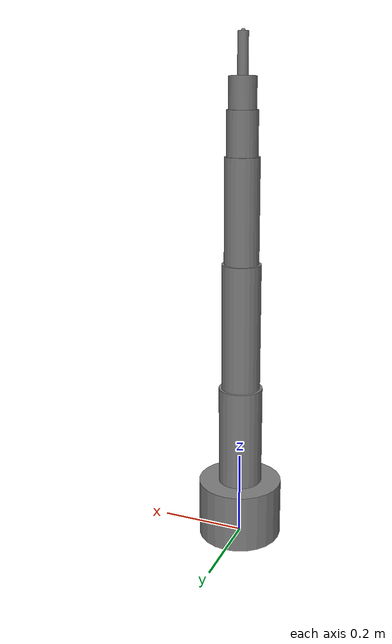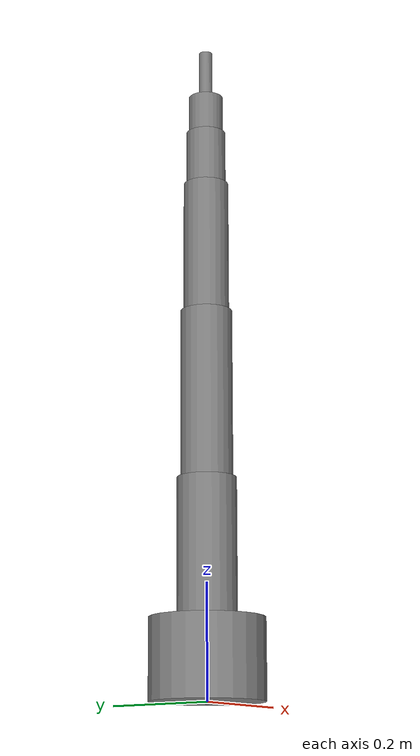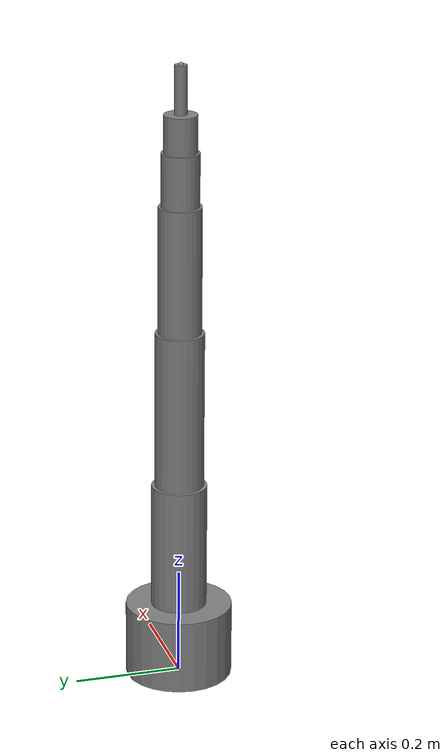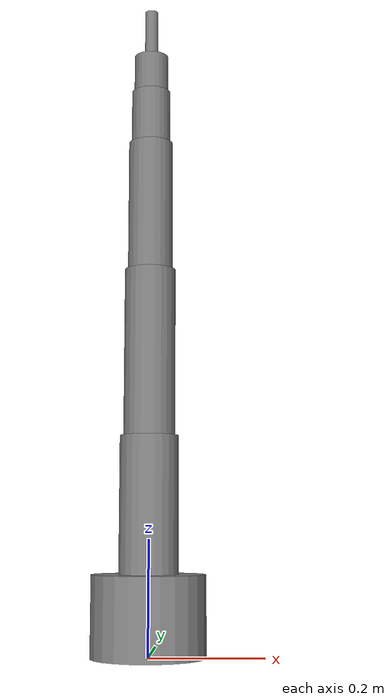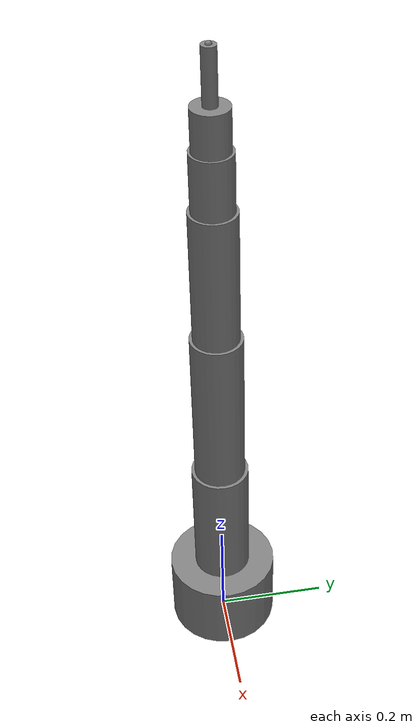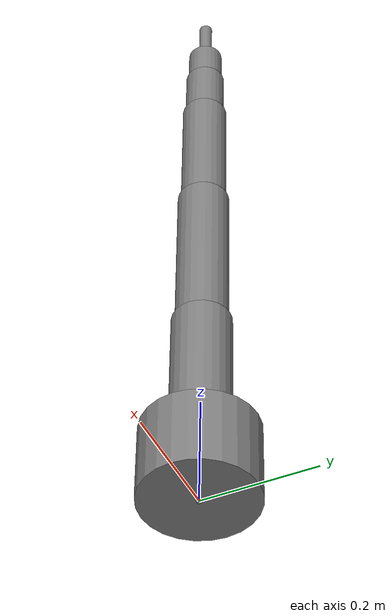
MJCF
<mujoco model="structural_body">
  <compiler angle="radian"/>

  <worldbody>
    <body name="body_0000">
      <inertial pos="0 0 0.07" quat="0.5 0.5 -0.5 0.5" mass="6" diaginertia="0.03 0.0248 0.0248"/>
      <geom size="0.1 0.07" pos="0 0 0.07" type="cylinder"/>
      <site name="robot_base" pos="0 0 0"/>
      <body name="body_0001" pos="0 0 0.14">
        <inertial pos="0 0 0.12" mass="1.83489" diaginertia="0.0100479 0.0100479 0.00248077"/>
        <joint name="axis_0000" pos="0 0 0" axis="0 0 1" range="-2.85 2.85" actuatorfrcrange="-140 140"/>
        <geom size="0.052 0.12" pos="0 0 0.12" type="cylinder"/>
        <body name="body_0002" pos="0 0 0.24">
          <inertial pos="0 0 0.15" mass="1.77618" diaginertia="0.0142511 0.0142511 0.00185963"/>
          <joint name="axis_0001" pos="0 0 0" axis="0 1 0" range="-2.85 2.85" actuatorfrcrange="-140 140"/>
          <geom size="0.04576 0.15" pos="0 0 0.15" type="cylinder"/>
          <body name="body_0003" pos="0 0 0.3">
            <inertial pos="0 0 0.12" mass="1.10038" diaginertia="0.00572789 0.00572789 0.00089217"/>
            <joint name="axis_0002" pos="0 0 0" axis="0 1 0" range="-2.85 2.85" actuatorfrcrange="-140 140"/>
            <geom size="0.040269 0.12" pos="0 0 0.12" type="cylinder"/>
            <body name="body_0004" pos="0 0 0.24">
              <inertial pos="0 0 0.05" mass="0.355055" diaginertia="0.00040734 0.00040734 0.00022293"/>
              <joint name="axis_0003" pos="0 0 0" axis="0 0 1" range="-2.85 2.85" actuatorfrcrange="-140 140"/>
              <geom size="0.035437 0.05" pos="0 0 0.05" type="cylinder"/>
              <body name="body_0005" pos="0 0 0.1">
                <inertial pos="0 0 0.035" mass="0.25" diaginertia="0.00016286 0.00016286 0.00012156"/>
                <joint name="axis_0004" pos="0 0 0" axis="0 1 0" range="-2.85 2.85" actuatorfrcrange="-140 140"/>
                <geom size="0.031184 0.035" pos="0 0 0.035" type="cylinder"/>
                <site name="body_0005_wrist" pos="0 0 0"/>
                <body name="body_0006" pos="0 0 0.07">
                  <inertial pos="0 0 0.045" mass="0.18" diaginertia="0.00012798 0.00012798 1.296e-05"/>
                  <geom size="0.012 0.045" pos="0 0 0.045" type="cylinder"/>
                  <site name="body_0005_tip" pos="0 0 0.09"/>
                </body>
              </body>
            </body>
          </body>
        </body>
      </body>
    </body>
  </worldbody>

  <actuator>
    <general name="axis_0000_motor" joint="axis_0000" ctrllimited="true" ctrlrange="-140 140" forcelimited="true" forcerange="-140 140"/>
    <general name="axis_0001_motor" joint="axis_0001" ctrllimited="true" ctrlrange="-140 140" forcelimited="true" forcerange="-140 140"/>
    <general name="axis_0002_motor" joint="axis_0002" ctrllimited="true" ctrlrange="-140 140" forcelimited="true" forcerange="-140 140"/>
    <general name="axis_0003_motor" joint="axis_0003" ctrllimited="true" ctrlrange="-140 140" forcelimited="true" forcerange="-140 140"/>
    <general name="axis_0004_motor" joint="axis_0004" ctrllimited="true" ctrlrange="-140 140" forcelimited="true" forcerange="-140 140"/>
  </actuator>
</mujoco>
